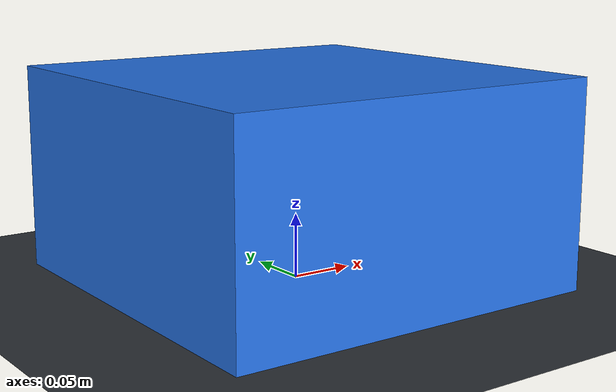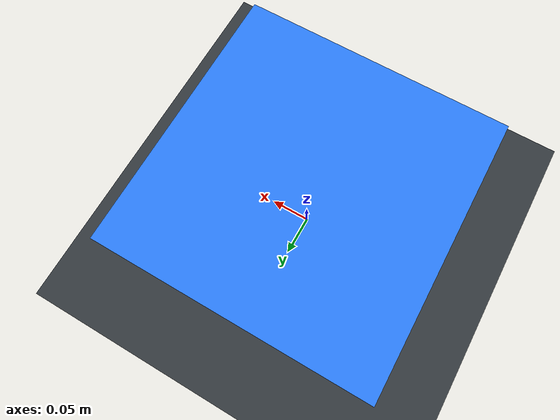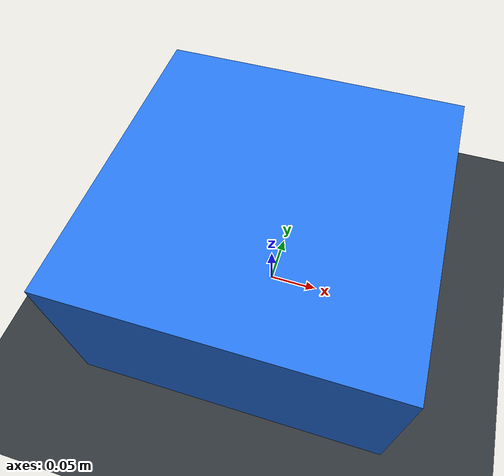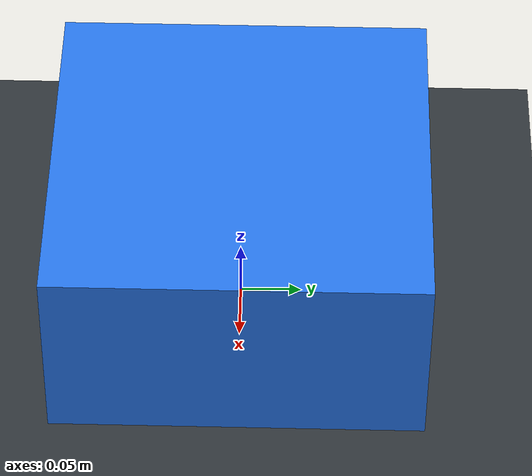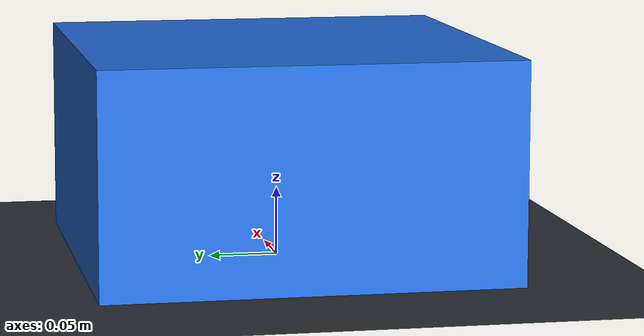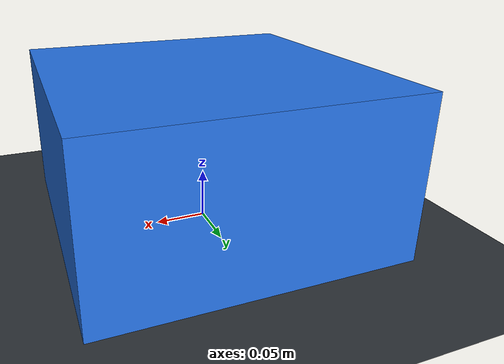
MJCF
<mujoco model="planar_pushing_mpc_plant">
  <compiler angle="radian" autolimits="true"/>
  <option gravity="0 0 -9.81" timestep="0.002" integrator="implicitfast"/>
  <default>
    <geom friction="0.8 0.02 0.001" condim="3"/>
    <joint damping="0.05"/>
  </default>
  <worldbody>
    <geom name="table" type="plane" size="2 2 0.1" rgba="0.18 0.20 0.22 1"/>
    <light pos="0 0 2" directional="true"/>
    <camera name="overview" pos="0 -1.5 1.3" xyaxes="1 0 0 0 0.65 0.75"/>

    <!-- The three joints restrict the block to planar motion.  Their damping
         represents table drag that is not captured by a purely planar model. -->
    <body name="block" pos="0 0 0.08">
      <joint name="block_x" type="slide" axis="1 0 0" damping="0.8"/>
      <joint name="block_y" type="slide" axis="0 1 0" damping="0.8"/>
      <joint name="block_yaw" type="hinge" axis="0 0 1" damping="0.04"/>
      <geom name="block_geom" type="box" size="0.15 0.15 0.08" mass="1"
            rgba="0.15 0.45 0.9 1"/>
    </body>

    <!-- Two physical, servo-driven pushers contact opposing box faces. -->
    <body name="left_pusher" pos="0 0 0.08">
      <joint name="left_pusher_x" type="slide" axis="1 0 0" damping="0.2"/>
      <joint name="left_pusher_y" type="slide" axis="0 1 0" damping="0.2"/>
      <geom name="left_pusher_geom" type="sphere" size="0.03" mass="0.20"
            friction="0.9 0.02 0.001" rgba="0.95 0.35 0.1 1"/>
    </body>
    <body name="right_pusher" pos="0 0 0.08">
      <joint name="right_pusher_x" type="slide" axis="1 0 0" damping="0.2"/>
      <joint name="right_pusher_y" type="slide" axis="0 1 0" damping="0.2"/>
      <geom name="right_pusher_geom" type="sphere" size="0.03" mass="0.20"
            friction="0.9 0.02 0.001" rgba="0.95 0.35 0.1 1"/>
    </body>
  </worldbody>
  <actuator>
    <position name="left_pusher_x_servo" joint="left_pusher_x" kp="150" kv="20"
              forcelimited="true" forcerange="-30 30" ctrllimited="true" ctrlrange="-0.8 0.8"/>
    <position name="left_pusher_y_servo" joint="left_pusher_y" kp="150" kv="20"
              forcelimited="true" forcerange="-30 30" ctrllimited="true" ctrlrange="-0.8 0.8"/>
    <position name="right_pusher_x_servo" joint="right_pusher_x" kp="150" kv="20"
              forcelimited="true" forcerange="-30 30" ctrllimited="true" ctrlrange="-0.8 0.8"/>
    <position name="right_pusher_y_servo" joint="right_pusher_y" kp="150" kv="20"
              forcelimited="true" forcerange="-30 30" ctrllimited="true" ctrlrange="-0.8 0.8"/>
  </actuator>
</mujoco>
